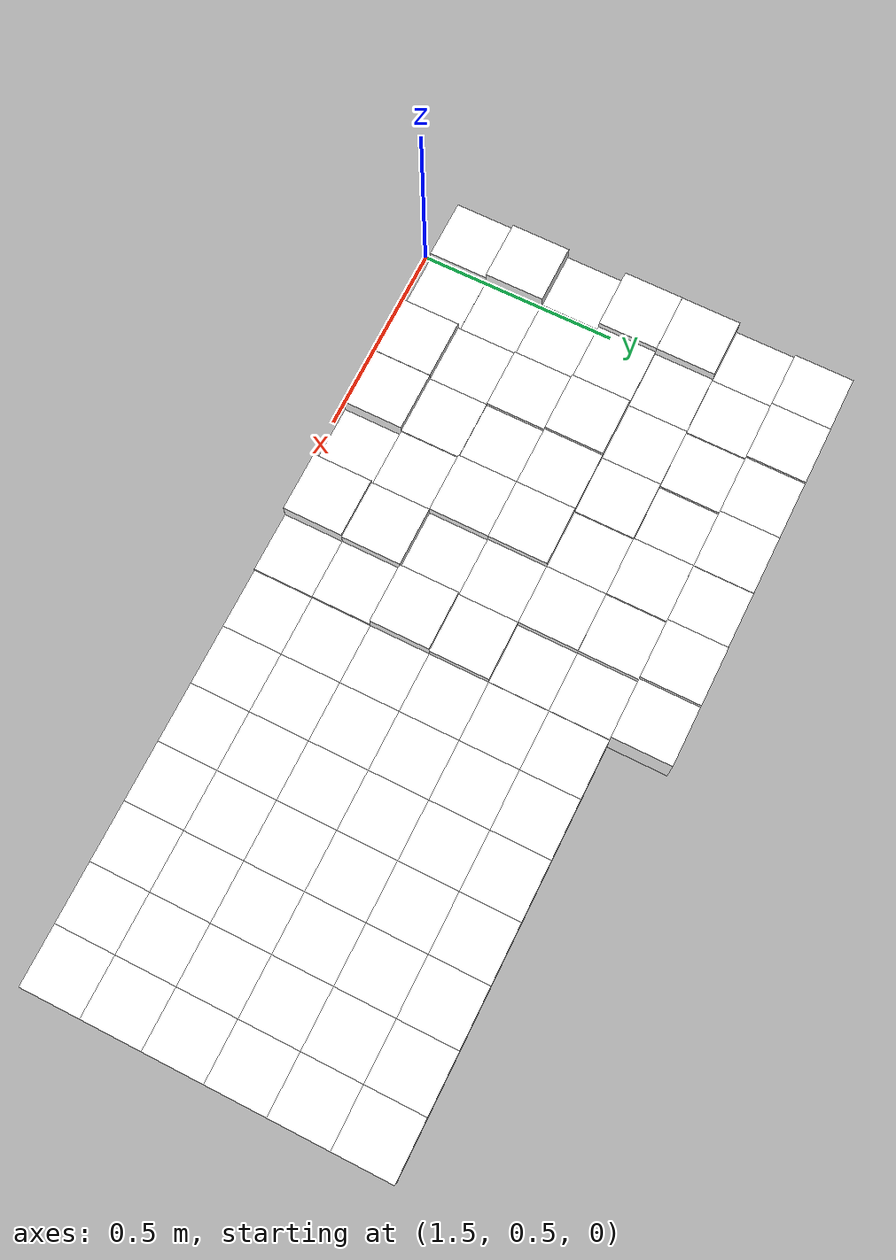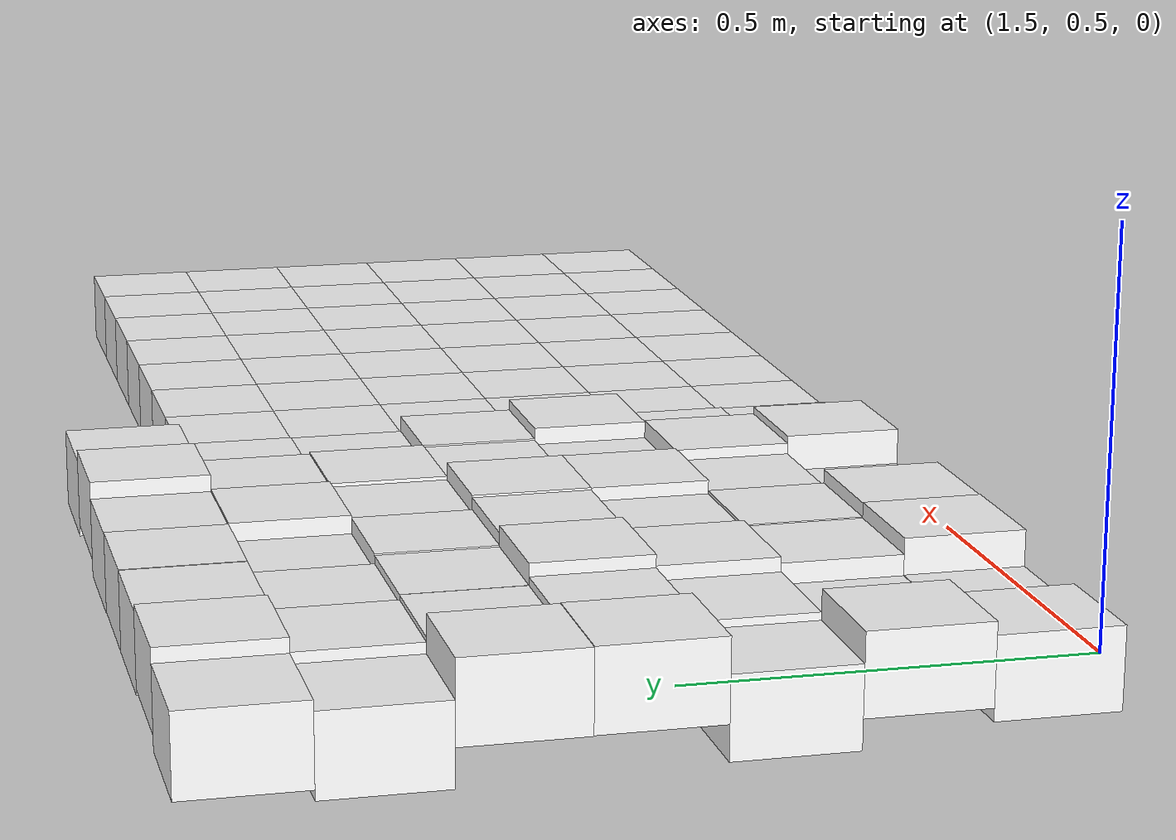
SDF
<sdf version="1.7">
 <world name="default">
  <include><uri>model://sun</uri></include>
  <model name="static_environment">
   <static>true</static>
   <link name="region_403">
    <pose>1.4499999999999997 0.6 0.02668696966901489 0.0 0.0 0.0</pose>
    <collision name="region_403_collision">
     <geometry><box><size>0.15 0.15 0.1</size></box></geometry>
     <surface><friction><ode><mu>1.0</mu><mu2>1.0</mu2></ode></friction></surface>
    </collision>
    <visual name="region_403_visual">
     <geometry><box><size>0.15 0.15 0.1</size></box></geometry>
     <material><ambient>1.0 1.0 1.0 1.0</ambient><diffuse>1.0 1.0 1.0 1.0</diffuse></material>
    </visual>
   </link>
   <link name="region_404">
    <pose>1.5999999999999996 0.6 0.0007287481242709837 0.0 0.0 0.0</pose>
    <collision name="region_404_collision">
     <geometry><box><size>0.15 0.15 0.1</size></box></geometry>
     <surface><friction><ode><mu>1.0</mu><mu2>1.0</mu2></ode></friction></surface>
    </collision>
    <visual name="region_404_visual">
     <geometry><box><size>0.15 0.15 0.1</size></box></geometry>
     <material><ambient>1.0 1.0 1.0 1.0</ambient><diffuse>1.0 1.0 1.0 1.0</diffuse></material>
    </visual>
   </link>
   <link name="region_405">
    <pose>1.7499999999999996 0.6 0.04593735040499425 0.0 0.0 0.0</pose>
    <collision name="region_405_collision">
     <geometry><box><size>0.15 0.15 0.1</size></box></geometry>
     <surface><friction><ode><mu>1.0</mu><mu2>1.0</mu2></ode></friction></surface>
    </collision>
    <visual name="region_405_visual">
     <geometry><box><size>0.15 0.15 0.1</size></box></geometry>
     <material><ambient>1.0 1.0 1.0 1.0</ambient><diffuse>1.0 1.0 1.0 1.0</diffuse></material>
    </visual>
   </link>
   <link name="region_406">
    <pose>1.8999999999999995 0.6 0.04503574270585062 0.0 0.0 0.0</pose>
    <collision name="region_406_collision">
     <geometry><box><size>0.15 0.15 0.1</size></box></geometry>
     <surface><friction><ode><mu>1.0</mu><mu2>1.0</mu2></ode></friction></surface>
    </collision>
    <visual name="region_406_visual">
     <geometry><box><size>0.15 0.15 0.1</size></box></geometry>
     <material><ambient>1.0 1.0 1.0 1.0</ambient><diffuse>1.0 1.0 1.0 1.0</diffuse></material>
    </visual>
   </link>
   <link name="region_407">
    <pose>2.05 0.6 0.0016710713813172296 0.0 0.0 0.0</pose>
    <collision name="region_407_collision">
     <geometry><box><size>0.15 0.15 0.1</size></box></geometry>
     <surface><friction><ode><mu>1.0</mu><mu2>1.0</mu2></ode></friction></surface>
    </collision>
    <visual name="region_407_visual">
     <geometry><box><size>0.15 0.15 0.1</size></box></geometry>
     <material><ambient>1.0 1.0 1.0 1.0</ambient><diffuse>1.0 1.0 1.0 1.0</diffuse></material>
    </visual>
   </link>
   <link name="region_408">
    <pose>2.2 0.6 0.047847466813755846 0.0 0.0 0.0</pose>
    <collision name="region_408_collision">
     <geometry><box><size>0.15 0.15 0.1</size></box></geometry>
     <surface><friction><ode><mu>1.0</mu><mu2>1.0</mu2></ode></friction></surface>
    </collision>
    <visual name="region_408_visual">
     <geometry><box><size>0.15 0.15 0.1</size></box></geometry>
     <material><ambient>1.0 1.0 1.0 1.0</ambient><diffuse>1.0 1.0 1.0 1.0</diffuse></material>
    </visual>
   </link>
   <link name="region_409">
    <pose>2.3500000000000005 0.6 0.006860466067803822 0.0 0.0 0.0</pose>
    <collision name="region_409_collision">
     <geometry><box><size>0.15 0.15 0.1</size></box></geometry>
     <surface><friction><ode><mu>1.0</mu><mu2>1.0</mu2></ode></friction></surface>
    </collision>
    <visual name="region_409_visual">
     <geometry><box><size>0.15 0.15 0.1</size></box></geometry>
     <material><ambient>1.0 1.0 1.0 1.0</ambient><diffuse>1.0 1.0 1.0 1.0</diffuse></material>
    </visual>
   </link>
   <link name="region_413">
    <pose>1.4499999999999997 0.75 0.04263677705546425 0.0 0.0 0.0</pose>
    <collision name="region_413_collision">
     <geometry><box><size>0.15 0.15 0.1</size></box></geometry>
     <surface><friction><ode><mu>1.0</mu><mu2>1.0</mu2></ode></friction></surface>
    </collision>
    <visual name="region_413_visual">
     <geometry><box><size>0.15 0.15 0.1</size></box></geometry>
     <material><ambient>1.0 1.0 1.0 1.0</ambient><diffuse>1.0 1.0 1.0 1.0</diffuse></material>
    </visual>
   </link>
   <link name="region_414">
    <pose>1.5999999999999996 0.75 0.00011296167592567686 0.0 0.0 0.0</pose>
    <collision name="region_414_collision">
     <geometry><box><size>0.15 0.15 0.1</size></box></geometry>
     <surface><friction><ode><mu>1.0</mu><mu2>1.0</mu2></ode></friction></surface>
    </collision>
    <visual name="region_414_visual">
     <geometry><box><size>0.15 0.15 0.1</size></box></geometry>
     <material><ambient>1.0 1.0 1.0 1.0</ambient><diffuse>1.0 1.0 1.0 1.0</diffuse></material>
    </visual>
   </link>
   <link name="region_415">
    <pose>1.7499999999999996 0.75 0.026061301361014644 0.0 0.0 0.0</pose>
    <collision name="region_415_collision">
     <geometry><box><size>0.15 0.15 0.1</size></box></geometry>
     <surface><friction><ode><mu>1.0</mu><mu2>1.0</mu2></ode></friction></surface>
    </collision>
    <visual name="region_415_visual">
     <geometry><box><size>0.15 0.15 0.1</size></box></geometry>
     <material><ambient>1.0 1.0 1.0 1.0</ambient><diffuse>1.0 1.0 1.0 1.0</diffuse></material>
    </visual>
   </link>
   <link name="region_416">
    <pose>1.8999999999999995 0.75 0.027601881663228328 0.0 0.0 0.0</pose>
    <collision name="region_416_collision">
     <geometry><box><size>0.15 0.15 0.1</size></box></geometry>
     <surface><friction><ode><mu>1.0</mu><mu2>1.0</mu2></ode></friction></surface>
    </collision>
    <visual name="region_416_visual">
     <geometry><box><size>0.15 0.15 0.1</size></box></geometry>
     <material><ambient>1.0 1.0 1.0 1.0</ambient><diffuse>1.0 1.0 1.0 1.0</diffuse></material>
    </visual>
   </link>
   <link name="region_417">
    <pose>2.05 0.75 0.024268870683135487 0.0 0.0 0.0</pose>
    <collision name="region_417_collision">
     <geometry><box><size>0.15 0.15 0.1</size></box></geometry>
     <surface><friction><ode><mu>1.0</mu><mu2>1.0</mu2></ode></friction></surface>
    </collision>
    <visual name="region_417_visual">
     <geometry><box><size>0.15 0.15 0.1</size></box></geometry>
     <material><ambient>1.0 1.0 1.0 1.0</ambient><diffuse>1.0 1.0 1.0 1.0</diffuse></material>
    </visual>
   </link>
   <link name="region_418">
    <pose>2.2 0.75 0.03840670770322112 0.0 0.0 0.0</pose>
    <collision name="region_418_collision">
     <geometry><box><size>0.15 0.15 0.1</size></box></geometry>
     <surface><friction><ode><mu>1.0</mu><mu2>1.0</mu2></ode></friction></surface>
    </collision>
    <visual name="region_418_visual">
     <geometry><box><size>0.15 0.15 0.1</size></box></geometry>
     <material><ambient>1.0 1.0 1.0 1.0</ambient><diffuse>1.0 1.0 1.0 1.0</diffuse></material>
    </visual>
   </link>
   <link name="region_419">
    <pose>2.3500000000000005 0.75 0.008035837656278506 0.0 0.0 0.0</pose>
    <collision name="region_419_collision">
     <geometry><box><size>0.15 0.15 0.1</size></box></geometry>
     <surface><friction><ode><mu>1.0</mu><mu2>1.0</mu2></ode></friction></surface>
    </collision>
    <visual name="region_419_visual">
     <geometry><box><size>0.15 0.15 0.1</size></box></geometry>
     <material><ambient>1.0 1.0 1.0 1.0</ambient><diffuse>1.0 1.0 1.0 1.0</diffuse></material>
    </visual>
   </link>
   <link name="region_423">
    <pose>1.4499999999999997 0.8999999999999999 0.0058136508700844915 0.0 0.0 0.0</pose>
    <collision name="region_423_collision">
     <geometry><box><size>0.15 0.15 0.1</size></box></geometry>
     <surface><friction><ode><mu>1.0</mu><mu2>1.0</mu2></ode></friction></surface>
    </collision>
    <visual name="region_423_visual">
     <geometry><box><size>0.15 0.15 0.1</size></box></geometry>
     <material><ambient>1.0 1.0 1.0 1.0</ambient><diffuse>1.0 1.0 1.0 1.0</diffuse></material>
    </visual>
   </link>
   <link name="region_424">
    <pose>1.5999999999999996 0.8999999999999999 0.015494879224501462 0.0 0.0 0.0</pose>
    <collision name="region_424_collision">
     <geometry><box><size>0.15 0.15 0.1</size></box></geometry>
     <surface><friction><ode><mu>1.0</mu><mu2>1.0</mu2></ode></friction></surface>
    </collision>
    <visual name="region_424_visual">
     <geometry><box><size>0.15 0.15 0.1</size></box></geometry>
     <material><ambient>1.0 1.0 1.0 1.0</ambient><diffuse>1.0 1.0 1.0 1.0</diffuse></material>
    </visual>
   </link>
   <link name="region_425">
    <pose>1.7499999999999996 0.8999999999999999 0.03357263226060014 0.0 0.0 0.0</pose>
    <collision name="region_425_collision">
     <geometry><box><size>0.15 0.15 0.1</size></box></geometry>
     <surface><friction><ode><mu>1.0</mu><mu2>1.0</mu2></ode></friction></surface>
    </collision>
    <visual name="region_425_visual">
     <geometry><box><size>0.15 0.15 0.1</size></box></geometry>
     <material><ambient>1.0 1.0 1.0 1.0</ambient><diffuse>1.0 1.0 1.0 1.0</diffuse></material>
    </visual>
   </link>
   <link name="region_426">
    <pose>1.8999999999999995 0.8999999999999999 0.023561488912500705 0.0 0.0 0.0</pose>
    <collision name="region_426_collision">
     <geometry><box><size>0.15 0.15 0.1</size></box></geometry>
     <surface><friction><ode><mu>1.0</mu><mu2>1.0</mu2></ode></friction></surface>
    </collision>
    <visual name="region_426_visual">
     <geometry><box><size>0.15 0.15 0.1</size></box></geometry>
     <material><ambient>1.0 1.0 1.0 1.0</ambient><diffuse>1.0 1.0 1.0 1.0</diffuse></material>
    </visual>
   </link>
   <link name="region_427">
    <pose>2.05 0.8999999999999999 0.040808414902301346 0.0 0.0 0.0</pose>
    <collision name="region_427_collision">
     <geometry><box><size>0.15 0.15 0.1</size></box></geometry>
     <surface><friction><ode><mu>1.0</mu><mu2>1.0</mu2></ode></friction></surface>
    </collision>
    <visual name="region_427_visual">
     <geometry><box><size>0.15 0.15 0.1</size></box></geometry>
     <material><ambient>1.0 1.0 1.0 1.0</ambient><diffuse>1.0 1.0 1.0 1.0</diffuse></material>
    </visual>
   </link>
   <link name="region_428">
    <pose>2.2 0.8999999999999999 0.014479339176527679 0.0 0.0 0.0</pose>
    <collision name="region_428_collision">
     <geometry><box><size>0.15 0.15 0.1</size></box></geometry>
     <surface><friction><ode><mu>1.0</mu><mu2>1.0</mu2></ode></friction></surface>
    </collision>
    <visual name="region_428_visual">
     <geometry><box><size>0.15 0.15 0.1</size></box></geometry>
     <material><ambient>1.0 1.0 1.0 1.0</ambient><diffuse>1.0 1.0 1.0 1.0</diffuse></material>
    </visual>
   </link>
   <link name="region_429">
    <pose>2.3500000000000005 0.8999999999999999 0.036656298880633535 0.0 0.0 0.0</pose>
    <collision name="region_429_collision">
     <geometry><box><size>0.15 0.15 0.1</size></box></geometry>
     <surface><friction><ode><mu>1.0</mu><mu2>1.0</mu2></ode></friction></surface>
    </collision>
    <visual name="region_429_visual">
     <geometry><box><size>0.15 0.15 0.1</size></box></geometry>
     <material><ambient>1.0 1.0 1.0 1.0</ambient><diffuse>1.0 1.0 1.0 1.0</diffuse></material>
    </visual>
   </link>
   <link name="region_433">
    <pose>1.4499999999999997 1.0499999999999998 0.04890290395082594 0.0 0.0 0.0</pose>
    <collision name="region_433_collision">
     <geometry><box><size>0.15 0.15 0.1</size></box></geometry>
     <surface><friction><ode><mu>1.0</mu><mu2>1.0</mu2></ode></friction></surface>
    </collision>
    <visual name="region_433_visual">
     <geometry><box><size>0.15 0.15 0.1</size></box></geometry>
     <material><ambient>1.0 1.0 1.0 1.0</ambient><diffuse>1.0 1.0 1.0 1.0</diffuse></material>
    </visual>
   </link>
   <link name="region_434">
    <pose>1.5999999999999996 1.0499999999999998 0.03122910558676762 0.0 0.0 0.0</pose>
    <collision name="region_434_collision">
     <geometry><box><size>0.15 0.15 0.1</size></box></geometry>
     <surface><friction><ode><mu>1.0</mu><mu2>1.0</mu2></ode></friction></surface>
    </collision>
    <visual name="region_434_visual">
     <geometry><box><size>0.15 0.15 0.1</size></box></geometry>
     <material><ambient>1.0 1.0 1.0 1.0</ambient><diffuse>1.0 1.0 1.0 1.0</diffuse></material>
    </visual>
   </link>
   <link name="region_435">
    <pose>1.7499999999999996 1.0499999999999998 0.04751567623497627 0.0 0.0 0.0</pose>
    <collision name="region_435_collision">
     <geometry><box><size>0.15 0.15 0.1</size></box></geometry>
     <surface><friction><ode><mu>1.0</mu><mu2>1.0</mu2></ode></friction></surface>
    </collision>
    <visual name="region_435_visual">
     <geometry><box><size>0.15 0.15 0.1</size></box></geometry>
     <material><ambient>1.0 1.0 1.0 1.0</ambient><diffuse>1.0 1.0 1.0 1.0</diffuse></material>
    </visual>
   </link>
   <link name="region_436">
    <pose>1.8999999999999995 1.0499999999999998 0.03837378253102444 0.0 0.0 0.0</pose>
    <collision name="region_436_collision">
     <geometry><box><size>0.15 0.15 0.1</size></box></geometry>
     <surface><friction><ode><mu>1.0</mu><mu2>1.0</mu2></ode></friction></surface>
    </collision>
    <visual name="region_436_visual">
     <geometry><box><size>0.15 0.15 0.1</size></box></geometry>
     <material><ambient>1.0 1.0 1.0 1.0</ambient><diffuse>1.0 1.0 1.0 1.0</diffuse></material>
    </visual>
   </link>
   <link name="region_437">
    <pose>2.05 1.0499999999999998 0.041250462660738674 0.0 0.0 0.0</pose>
    <collision name="region_437_collision">
     <geometry><box><size>0.15 0.15 0.1</size></box></geometry>
     <surface><friction><ode><mu>1.0</mu><mu2>1.0</mu2></ode></friction></surface>
    </collision>
    <visual name="region_437_visual">
     <geometry><box><size>0.15 0.15 0.1</size></box></geometry>
     <material><ambient>1.0 1.0 1.0 1.0</ambient><diffuse>1.0 1.0 1.0 1.0</diffuse></material>
    </visual>
   </link>
   <link name="region_438">
    <pose>2.2 1.0499999999999998 0.020332015090333083 0.0 0.0 0.0</pose>
    <collision name="region_438_collision">
     <geometry><box><size>0.15 0.15 0.1</size></box></geometry>
     <surface><friction><ode><mu>1.0</mu><mu2>1.0</mu2></ode></friction></surface>
    </collision>
    <visual name="region_438_visual">
     <geometry><box><size>0.15 0.15 0.1</size></box></geometry>
     <material><ambient>1.0 1.0 1.0 1.0</ambient><diffuse>1.0 1.0 1.0 1.0</diffuse></material>
    </visual>
   </link>
   <link name="region_439">
    <pose>2.3500000000000005 1.0499999999999998 0.022565420571065715 0.0 0.0 0.0</pose>
    <collision name="region_439_collision">
     <geometry><box><size>0.15 0.15 0.1</size></box></geometry>
     <surface><friction><ode><mu>1.0</mu><mu2>1.0</mu2></ode></friction></surface>
    </collision>
    <visual name="region_439_visual">
     <geometry><box><size>0.15 0.15 0.1</size></box></geometry>
     <material><ambient>1.0 1.0 1.0 1.0</ambient><diffuse>1.0 1.0 1.0 1.0</diffuse></material>
    </visual>
   </link>
   <link name="region_443">
    <pose>1.4499999999999997 1.2 0.048129845151392514 0.0 0.0 0.0</pose>
    <collision name="region_443_collision">
     <geometry><box><size>0.15 0.15 0.1</size></box></geometry>
     <surface><friction><ode><mu>1.0</mu><mu2>1.0</mu2></ode></friction></surface>
    </collision>
    <visual name="region_443_visual">
     <geometry><box><size>0.15 0.15 0.1</size></box></geometry>
     <material><ambient>1.0 1.0 1.0 1.0</ambient><diffuse>1.0 1.0 1.0 1.0</diffuse></material>
    </visual>
   </link>
   <link name="region_444">
    <pose>1.5999999999999996 1.2 0.020962513512955312 0.0 0.0 0.0</pose>
    <collision name="region_444_collision">
     <geometry><box><size>0.15 0.15 0.1</size></box></geometry>
     <surface><friction><ode><mu>1.0</mu><mu2>1.0</mu2></ode></friction></surface>
    </collision>
    <visual name="region_444_visual">
     <geometry><box><size>0.15 0.15 0.1</size></box></geometry>
     <material><ambient>1.0 1.0 1.0 1.0</ambient><diffuse>1.0 1.0 1.0 1.0</diffuse></material>
    </visual>
   </link>
   <link name="region_445">
    <pose>1.7499999999999996 1.2 0.021202622327549936 0.0 0.0 0.0</pose>
    <collision name="region_445_collision">
     <geometry><box><size>0.15 0.15 0.1</size></box></geometry>
     <surface><friction><ode><mu>1.0</mu><mu2>1.0</mu2></ode></friction></surface>
    </collision>
    <visual name="region_445_visual">
     <geometry><box><size>0.15 0.15 0.1</size></box></geometry>
     <material><ambient>1.0 1.0 1.0 1.0</ambient><diffuse>1.0 1.0 1.0 1.0</diffuse></material>
    </visual>
   </link>
   <link name="region_446">
    <pose>1.8999999999999995 1.2 0.023157443486367297 0.0 0.0 0.0</pose>
    <collision name="region_446_collision">
     <geometry><box><size>0.15 0.15 0.1</size></box></geometry>
     <surface><friction><ode><mu>1.0</mu><mu2>1.0</mu2></ode></friction></surface>
    </collision>
    <visual name="region_446_visual">
     <geometry><box><size>0.15 0.15 0.1</size></box></geometry>
     <material><ambient>1.0 1.0 1.0 1.0</ambient><diffuse>1.0 1.0 1.0 1.0</diffuse></material>
    </visual>
   </link>
   <link name="region_447">
    <pose>2.05 1.2 0.018686157441195766 0.0 0.0 0.0</pose>
    <collision name="region_447_collision">
     <geometry><box><size>0.15 0.15 0.1</size></box></geometry>
     <surface><friction><ode><mu>1.0</mu><mu2>1.0</mu2></ode></friction></surface>
    </collision>
    <visual name="region_447_visual">
     <geometry><box><size>0.15 0.15 0.1</size></box></geometry>
     <material><ambient>1.0 1.0 1.0 1.0</ambient><diffuse>1.0 1.0 1.0 1.0</diffuse></material>
    </visual>
   </link>
   <link name="region_448">
    <pose>2.2 1.2 0.02327540500862555 0.0 0.0 0.0</pose>
    <collision name="region_448_collision">
     <geometry><box><size>0.15 0.15 0.1</size></box></geometry>
     <surface><friction><ode><mu>1.0</mu><mu2>1.0</mu2></ode></friction></surface>
    </collision>
    <visual name="region_448_visual">
     <geometry><box><size>0.15 0.15 0.1</size></box></geometry>
     <material><ambient>1.0 1.0 1.0 1.0</ambient><diffuse>1.0 1.0 1.0 1.0</diffuse></material>
    </visual>
   </link>
   <link name="region_449">
    <pose>2.3500000000000005 1.2 0.0017584130735402383 0.0 0.0 0.0</pose>
    <collision name="region_449_collision">
     <geometry><box><size>0.15 0.15 0.1</size></box></geometry>
     <surface><friction><ode><mu>1.0</mu><mu2>1.0</mu2></ode></friction></surface>
    </collision>
    <visual name="region_449_visual">
     <geometry><box><size>0.15 0.15 0.1</size></box></geometry>
     <material><ambient>1.0 1.0 1.0 1.0</ambient><diffuse>1.0 1.0 1.0 1.0</diffuse></material>
    </visual>
   </link>
   <link name="region_453">
    <pose>1.4499999999999997 1.35 0.0013953894430766278 0.0 0.0 0.0</pose>
    <collision name="region_453_collision">
     <geometry><box><size>0.15 0.15 0.1</size></box></geometry>
     <surface><friction><ode><mu>1.0</mu><mu2>1.0</mu2></ode></friction></surface>
    </collision>
    <visual name="region_453_visual">
     <geometry><box><size>0.15 0.15 0.1</size></box></geometry>
     <material><ambient>1.0 1.0 1.0 1.0</ambient><diffuse>1.0 1.0 1.0 1.0</diffuse></material>
    </visual>
   </link>
   <link name="region_454">
    <pose>1.5999999999999996 1.35 0.015008502991199331 0.0 0.0 0.0</pose>
    <collision name="region_454_collision">
     <geometry><box><size>0.15 0.15 0.1</size></box></geometry>
     <surface><friction><ode><mu>1.0</mu><mu2>1.0</mu2></ode></friction></surface>
    </collision>
    <visual name="region_454_visual">
     <geometry><box><size>0.15 0.15 0.1</size></box></geometry>
     <material><ambient>1.0 1.0 1.0 1.0</ambient><diffuse>1.0 1.0 1.0 1.0</diffuse></material>
    </visual>
   </link>
   <link name="region_455">
    <pose>1.7499999999999996 1.35 0.011042626041444277 0.0 0.0 0.0</pose>
    <collision name="region_455_collision">
     <geometry><box><size>0.15 0.15 0.1</size></box></geometry>
     <surface><friction><ode><mu>1.0</mu><mu2>1.0</mu2></ode></friction></surface>
    </collision>
    <visual name="region_455_visual">
     <geometry><box><size>0.15 0.15 0.1</size></box></geometry>
     <material><ambient>1.0 1.0 1.0 1.0</ambient><diffuse>1.0 1.0 1.0 1.0</diffuse></material>
    </visual>
   </link>
   <link name="region_456">
    <pose>1.8999999999999995 1.35 0.0027509996670100068 0.0 0.0 0.0</pose>
    <collision name="region_456_collision">
     <geometry><box><size>0.15 0.15 0.1</size></box></geometry>
     <surface><friction><ode><mu>1.0</mu><mu2>1.0</mu2></ode></friction></surface>
    </collision>
    <visual name="region_456_visual">
     <geometry><box><size>0.15 0.15 0.1</size></box></geometry>
     <material><ambient>1.0 1.0 1.0 1.0</ambient><diffuse>1.0 1.0 1.0 1.0</diffuse></material>
    </visual>
   </link>
   <link name="region_457">
    <pose>2.05 1.35 0.026162303538914595 0.0 0.0 0.0</pose>
    <collision name="region_457_collision">
     <geometry><box><size>0.15 0.15 0.1</size></box></geometry>
     <surface><friction><ode><mu>1.0</mu><mu2>1.0</mu2></ode></friction></surface>
    </collision>
    <visual name="region_457_visual">
     <geometry><box><size>0.15 0.15 0.1</size></box></geometry>
     <material><ambient>1.0 1.0 1.0 1.0</ambient><diffuse>1.0 1.0 1.0 1.0</diffuse></material>
    </visual>
   </link>
   <link name="region_458">
    <pose>2.2 1.35 0.02081848286473051 0.0 0.0 0.0</pose>
    <collision name="region_458_collision">
     <geometry><box><size>0.15 0.15 0.1</size></box></geometry>
     <surface><friction><ode><mu>1.0</mu><mu2>1.0</mu2></ode></friction></surface>
    </collision>
    <visual name="region_458_visual">
     <geometry><box><size>0.15 0.15 0.1</size></box></geometry>
     <material><ambient>1.0 1.0 1.0 1.0</ambient><diffuse>1.0 1.0 1.0 1.0</diffuse></material>
    </visual>
   </link>
   <link name="region_459">
    <pose>2.3500000000000005 1.35 0.0024109374912785198 0.0 0.0 0.0</pose>
    <collision name="region_459_collision">
     <geometry><box><size>0.15 0.15 0.1</size></box></geometry>
     <surface><friction><ode><mu>1.0</mu><mu2>1.0</mu2></ode></friction></surface>
    </collision>
    <visual name="region_459_visual">
     <geometry><box><size>0.15 0.15 0.1</size></box></geometry>
     <material><ambient>1.0 1.0 1.0 1.0</ambient><diffuse>1.0 1.0 1.0 1.0</diffuse></material>
    </visual>
   </link>
   <link name="region_463">
    <pose>1.4499999999999997 1.5 0.013855860721259812 0.0 0.0 0.0</pose>
    <collision name="region_463_collision">
     <geometry><box><size>0.15 0.15 0.1</size></box></geometry>
     <surface><friction><ode><mu>1.0</mu><mu2>1.0</mu2></ode></friction></surface>
    </collision>
    <visual name="region_463_visual">
     <geometry><box><size>0.15 0.15 0.1</size></box></geometry>
     <material><ambient>1.0 1.0 1.0 1.0</ambient><diffuse>1.0 1.0 1.0 1.0</diffuse></material>
    </visual>
   </link>
   <link name="region_464">
    <pose>1.5999999999999996 1.5 0.03208390458427115 0.0 0.0 0.0</pose>
    <collision name="region_464_collision">
     <geometry><box><size>0.15 0.15 0.1</size></box></geometry>
     <surface><friction><ode><mu>1.0</mu><mu2>1.0</mu2></ode></friction></surface>
    </collision>
    <visual name="region_464_visual">
     <geometry><box><size>0.15 0.15 0.1</size></box></geometry>
     <material><ambient>1.0 1.0 1.0 1.0</ambient><diffuse>1.0 1.0 1.0 1.0</diffuse></material>
    </visual>
   </link>
   <link name="region_465">
    <pose>1.7499999999999996 1.5 0.024636865271825393 0.0 0.0 0.0</pose>
    <collision name="region_465_collision">
     <geometry><box><size>0.15 0.15 0.1</size></box></geometry>
     <surface><friction><ode><mu>1.0</mu><mu2>1.0</mu2></ode></friction></surface>
    </collision>
    <visual name="region_465_visual">
     <geometry><box><size>0.15 0.15 0.1</size></box></geometry>
     <material><ambient>1.0 1.0 1.0 1.0</ambient><diffuse>1.0 1.0 1.0 1.0</diffuse></material>
    </visual>
   </link>
   <link name="region_466">
    <pose>1.8999999999999995 1.5 0.02532780378340474 0.0 0.0 0.0</pose>
    <collision name="region_466_collision">
     <geometry><box><size>0.15 0.15 0.1</size></box></geometry>
     <surface><friction><ode><mu>1.0</mu><mu2>1.0</mu2></ode></friction></surface>
    </collision>
    <visual name="region_466_visual">
     <geometry><box><size>0.15 0.15 0.1</size></box></geometry>
     <material><ambient>1.0 1.0 1.0 1.0</ambient><diffuse>1.0 1.0 1.0 1.0</diffuse></material>
    </visual>
   </link>
   <link name="region_467">
    <pose>2.05 1.5 0.02307201300329776 0.0 0.0 0.0</pose>
    <collision name="region_467_collision">
     <geometry><box><size>0.15 0.15 0.1</size></box></geometry>
     <surface><friction><ode><mu>1.0</mu><mu2>1.0</mu2></ode></friction></surface>
    </collision>
    <visual name="region_467_visual">
     <geometry><box><size>0.15 0.15 0.1</size></box></geometry>
     <material><ambient>1.0 1.0 1.0 1.0</ambient><diffuse>1.0 1.0 1.0 1.0</diffuse></material>
    </visual>
   </link>
   <link name="region_468">
    <pose>2.2 1.5 0.04473715369639454 0.0 0.0 0.0</pose>
    <collision name="region_468_collision">
     <geometry><box><size>0.15 0.15 0.1</size></box></geometry>
     <surface><friction><ode><mu>1.0</mu><mu2>1.0</mu2></ode></friction></surface>
    </collision>
    <visual name="region_468_visual">
     <geometry><box><size>0.15 0.15 0.1</size></box></geometry>
     <material><ambient>1.0 1.0 1.0 1.0</ambient><diffuse>1.0 1.0 1.0 1.0</diffuse></material>
    </visual>
   </link>
   <link name="region_469">
    <pose>2.3500000000000005 1.5 0.030288884656779248 0.0 0.0 0.0</pose>
    <collision name="region_469_collision">
     <geometry><box><size>0.15 0.15 0.1</size></box></geometry>
     <surface><friction><ode><mu>1.0</mu><mu2>1.0</mu2></ode></friction></surface>
    </collision>
    <visual name="region_469_visual">
     <geometry><box><size>0.15 0.15 0.1</size></box></geometry>
     <material><ambient>1.0 1.0 1.0 1.0</ambient><diffuse>1.0 1.0 1.0 1.0</diffuse></material>
    </visual>
   </link>
   <link name="region_600">
    <pose>2.5 0.6 0.0 0.0 0.0 0.0</pose>
    <collision name="region_600_collision">
     <geometry><box><size>0.15 0.15 0.1</size></box></geometry>
     <surface><friction><ode><mu>1.0</mu><mu2>1.0</mu2></ode></friction></surface>
    </collision>
    <visual name="region_600_visual">
     <geometry><box><size>0.15 0.15 0.1</size></box></geometry>
     <material><ambient>1.0 1.0 1.0 1.0</ambient><diffuse>1.0 1.0 1.0 1.0</diffuse></material>
    </visual>
   </link>
   <link name="region_601">
    <pose>2.6500000000000004 0.6 0.0 0.0 0.0 0.0</pose>
    <collision name="region_601_collision">
     <geometry><box><size>0.15 0.15 0.1</size></box></geometry>
     <surface><friction><ode><mu>1.0</mu><mu2>1.0</mu2></ode></friction></surface>
    </collision>
    <visual name="region_601_visual">
     <geometry><box><size>0.15 0.15 0.1</size></box></geometry>
     <material><ambient>1.0 1.0 1.0 1.0</ambient><diffuse>1.0 1.0 1.0 1.0</diffuse></material>
    </visual>
   </link>
   <link name="region_602">
    <pose>2.8000000000000007 0.6 0.0 0.0 0.0 0.0</pose>
    <collision name="region_602_collision">
     <geometry><box><size>0.15 0.15 0.1</size></box></geometry>
     <surface><friction><ode><mu>1.0</mu><mu2>1.0</mu2></ode></friction></surface>
    </collision>
    <visual name="region_602_visual">
     <geometry><box><size>0.15 0.15 0.1</size></box></geometry>
     <material><ambient>1.0 1.0 1.0 1.0</ambient><diffuse>1.0 1.0 1.0 1.0</diffuse></material>
    </visual>
   </link>
   <link name="region_603">
    <pose>2.950000000000001 0.6 0.0 0.0 0.0 0.0</pose>
    <collision name="region_603_collision">
     <geometry><box><size>0.15 0.15 0.1</size></box></geometry>
     <surface><friction><ode><mu>1.0</mu><mu2>1.0</mu2></ode></friction></surface>
    </collision>
    <visual name="region_603_visual">
     <geometry><box><size>0.15 0.15 0.1</size></box></geometry>
     <material><ambient>1.0 1.0 1.0 1.0</ambient><diffuse>1.0 1.0 1.0 1.0</diffuse></material>
    </visual>
   </link>
   <link name="region_604">
    <pose>3.1000000000000014 0.6 0.0 0.0 0.0 0.0</pose>
    <collision name="region_604_collision">
     <geometry><box><size>0.15 0.15 0.1</size></box></geometry>
     <surface><friction><ode><mu>1.0</mu><mu2>1.0</mu2></ode></friction></surface>
    </collision>
    <visual name="region_604_visual">
     <geometry><box><size>0.15 0.15 0.1</size></box></geometry>
     <material><ambient>1.0 1.0 1.0 1.0</ambient><diffuse>1.0 1.0 1.0 1.0</diffuse></material>
    </visual>
   </link>
   <link name="region_605">
    <pose>3.2500000000000018 0.6 0.0 0.0 0.0 0.0</pose>
    <collision name="region_605_collision">
     <geometry><box><size>0.15 0.15 0.1</size></box></geometry>
     <surface><friction><ode><mu>1.0</mu><mu2>1.0</mu2></ode></friction></surface>
    </collision>
    <visual name="region_605_visual">
     <geometry><box><size>0.15 0.15 0.1</size></box></geometry>
     <material><ambient>1.0 1.0 1.0 1.0</ambient><diffuse>1.0 1.0 1.0 1.0</diffuse></material>
    </visual>
   </link>
   <link name="region_606">
    <pose>3.400000000000002 0.6 0.0 0.0 0.0 0.0</pose>
    <collision name="region_606_collision">
     <geometry><box><size>0.15 0.15 0.1</size></box></geometry>
     <surface><friction><ode><mu>1.0</mu><mu2>1.0</mu2></ode></friction></surface>
    </collision>
    <visual name="region_606_visual">
     <geometry><box><size>0.15 0.15 0.1</size></box></geometry>
     <material><ambient>1.0 1.0 1.0 1.0</ambient><diffuse>1.0 1.0 1.0 1.0</diffuse></material>
    </visual>
   </link>
   <link name="region_620">
    <pose>2.5 0.75 0.0 0.0 0.0 0.0</pose>
    <collision name="region_620_collision">
     <geometry><box><size>0.15 0.15 0.1</size></box></geometry>
     <surface><friction><ode><mu>1.0</mu><mu2>1.0</mu2></ode></friction></surface>
    </collision>
    <visual name="region_620_visual">
     <geometry><box><size>0.15 0.15 0.1</size></box></geometry>
     <material><ambient>1.0 1.0 1.0 1.0</ambient><diffuse>1.0 1.0 1.0 1.0</diffuse></material>
    </visual>
   </link>
   <link name="region_621">
    <pose>2.6500000000000004 0.75 0.0 0.0 0.0 0.0</pose>
    <collision name="region_621_collision">
     <geometry><box><size>0.15 0.15 0.1</size></box></geometry>
     <surface><friction><ode><mu>1.0</mu><mu2>1.0</mu2></ode></friction></surface>
    </collision>
    <visual name="region_621_visual">
     <geometry><box><size>0.15 0.15 0.1</size></box></geometry>
     <material><ambient>1.0 1.0 1.0 1.0</ambient><diffuse>1.0 1.0 1.0 1.0</diffuse></material>
    </visual>
   </link>
   <link name="region_622">
    <pose>2.8000000000000007 0.75 0.0 0.0 0.0 0.0</pose>
    <collision name="region_622_collision">
     <geometry><box><size>0.15 0.15 0.1</size></box></geometry>
     <surface><friction><ode><mu>1.0</mu><mu2>1.0</mu2></ode></friction></surface>
    </collision>
    <visual name="region_622_visual">
     <geometry><box><size>0.15 0.15 0.1</size></box></geometry>
     <material><ambient>1.0 1.0 1.0 1.0</ambient><diffuse>1.0 1.0 1.0 1.0</diffuse></material>
    </visual>
   </link>
   <link name="region_623">
    <pose>2.950000000000001 0.75 0.0 0.0 0.0 0.0</pose>
    <collision name="region_623_collision">
     <geometry><box><size>0.15 0.15 0.1</size></box></geometry>
     <surface><friction><ode><mu>1.0</mu><mu2>1.0</mu2></ode></friction></surface>
    </collision>
    <visual name="region_623_visual">
     <geometry><box><size>0.15 0.15 0.1</size></box></geometry>
     <material><ambient>1.0 1.0 1.0 1.0</ambient><diffuse>1.0 1.0 1.0 1.0</diffuse></material>
    </visual>
   </link>
   <link name="region_624">
    <pose>3.1000000000000014 0.75 0.0 0.0 0.0 0.0</pose>
    <collision name="region_624_collision">
     <geometry><box><size>0.15 0.15 0.1</size></box></geometry>
     <surface><friction><ode><mu>1.0</mu><mu2>1.0</mu2></ode></friction></surface>
    </collision>
    <visual name="region_624_visual">
     <geometry><box><size>0.15 0.15 0.1</size></box></geometry>
     <material><ambient>1.0 1.0 1.0 1.0</ambient><diffuse>1.0 1.0 1.0 1.0</diffuse></material>
    </visual>
   </link>
   <link name="region_625">
    <pose>3.2500000000000018 0.75 0.0 0.0 0.0 0.0</pose>
    <collision name="region_625_collision">
     <geometry><box><size>0.15 0.15 0.1</size></box></geometry>
     <surface><friction><ode><mu>1.0</mu><mu2>1.0</mu2></ode></friction></surface>
    </collision>
    <visual name="region_625_visual">
     <geometry><box><size>0.15 0.15 0.1</size></box></geometry>
     <material><ambient>1.0 1.0 1.0 1.0</ambient><diffuse>1.0 1.0 1.0 1.0</diffuse></material>
    </visual>
   </link>
   <link name="region_626">
    <pose>3.400000000000002 0.75 0.0 0.0 0.0 0.0</pose>
    <collision name="region_626_collision">
     <geometry><box><size>0.15 0.15 0.1</size></box></geometry>
     <surface><friction><ode><mu>1.0</mu><mu2>1.0</mu2></ode></friction></surface>
    </collision>
    <visual name="region_626_visual">
     <geometry><box><size>0.15 0.15 0.1</size></box></geometry>
     <material><ambient>1.0 1.0 1.0 1.0</ambient><diffuse>1.0 1.0 1.0 1.0</diffuse></material>
    </visual>
   </link>
   <link name="region_640">
    <pose>2.5 0.8999999999999999 0.0 0.0 0.0 0.0</pose>
    <collision name="region_640_collision">
     <geometry><box><size>0.15 0.15 0.1</size></box></geometry>
     <surface><friction><ode><mu>1.0</mu><mu2>1.0</mu2></ode></friction></surface>
    </collision>
    <visual name="region_640_visual">
     <geometry><box><size>0.15 0.15 0.1</size></box></geometry>
     <material><ambient>1.0 1.0 1.0 1.0</ambient><diffuse>1.0 1.0 1.0 1.0</diffuse></material>
    </visual>
   </link>
   <link name="region_641">
    <pose>2.6500000000000004 0.8999999999999999 0.0 0.0 0.0 0.0</pose>
    <collision name="region_641_collision">
     <geometry><box><size>0.15 0.15 0.1</size></box></geometry>
     <surface><friction><ode><mu>1.0</mu><mu2>1.0</mu2></ode></friction></surface>
    </collision>
    <visual name="region_641_visual">
     <geometry><box><size>0.15 0.15 0.1</size></box></geometry>
     <material><ambient>1.0 1.0 1.0 1.0</ambient><diffuse>1.0 1.0 1.0 1.0</diffuse></material>
    </visual>
   </link>
   <link name="region_642">
    <pose>2.8000000000000007 0.8999999999999999 0.0 0.0 0.0 0.0</pose>
    <collision name="region_642_collision">
     <geometry><box><size>0.15 0.15 0.1</size></box></geometry>
     <surface><friction><ode><mu>1.0</mu><mu2>1.0</mu2></ode></friction></surface>
    </collision>
    <visual name="region_642_visual">
     <geometry><box><size>0.15 0.15 0.1</size></box></geometry>
     <material><ambient>1.0 1.0 1.0 1.0</ambient><diffuse>1.0 1.0 1.0 1.0</diffuse></material>
    </visual>
   </link>
   <link name="region_643">
    <pose>2.950000000000001 0.8999999999999999 0.0 0.0 0.0 0.0</pose>
    <collision name="region_643_collision">
     <geometry><box><size>0.15 0.15 0.1</size></box></geometry>
     <surface><friction><ode><mu>1.0</mu><mu2>1.0</mu2></ode></friction></surface>
    </collision>
    <visual name="region_643_visual">
     <geometry><box><size>0.15 0.15 0.1</size></box></geometry>
     <material><ambient>1.0 1.0 1.0 1.0</ambient><diffuse>1.0 1.0 1.0 1.0</diffuse></material>
    </visual>
   </link>
   <link name="region_644">
    <pose>3.1000000000000014 0.8999999999999999 0.0 0.0 0.0 0.0</pose>
    <collision name="region_644_collision">
     <geometry><box><size>0.15 0.15 0.1</size></box></geometry>
     <surface><friction><ode><mu>1.0</mu><mu2>1.0</mu2></ode></friction></surface>
    </collision>
    <visual name="region_644_visual">
     <geometry><box><size>0.15 0.15 0.1</size></box></geometry>
     <material><ambient>1.0 1.0 1.0 1.0</ambient><diffuse>1.0 1.0 1.0 1.0</diffuse></material>
    </visual>
   </link>
   <link name="region_645">
    <pose>3.2500000000000018 0.8999999999999999 0.0 0.0 0.0 0.0</pose>
    <collision name="region_645_collision">
     <geometry><box><size>0.15 0.15 0.1</size></box></geometry>
     <surface><friction><ode><mu>1.0</mu><mu2>1.0</mu2></ode></friction></surface>
    </collision>
    <visual name="region_645_visual">
     <geometry><box><size>0.15 0.15 0.1</size></box></geometry>
     <material><ambient>1.0 1.0 1.0 1.0</ambient><diffuse>1.0 1.0 1.0 1.0</diffuse></material>
    </visual>
   </link>
   <link name="region_646">
    <pose>3.400000000000002 0.8999999999999999 0.0 0.0 0.0 0.0</pose>
    <collision name="region_646_collision">
     <geometry><box><size>0.15 0.15 0.1</size></box></geometry>
     <surface><friction><ode><mu>1.0</mu><mu2>1.0</mu2></ode></friction></surface>
    </collision>
    <visual name="region_646_visual">
     <geometry><box><size>0.15 0.15 0.1</size></box></geometry>
     <material><ambient>1.0 1.0 1.0 1.0</ambient><diffuse>1.0 1.0 1.0 1.0</diffuse></material>
    </visual>
   </link>
   <link name="region_660">
    <pose>2.5 1.0499999999999998 0.0 0.0 0.0 0.0</pose>
    <collision name="region_660_collision">
     <geometry><box><size>0.15 0.15 0.1</size></box></geometry>
     <surface><friction><ode><mu>1.0</mu><mu2>1.0</mu2></ode></friction></surface>
    </collision>
    <visual name="region_660_visual">
     <geometry><box><size>0.15 0.15 0.1</size></box></geometry>
     <material><ambient>1.0 1.0 1.0 1.0</ambient><diffuse>1.0 1.0 1.0 1.0</diffuse></material>
    </visual>
   </link>
   <link name="region_661">
    <pose>2.6500000000000004 1.0499999999999998 0.0 0.0 0.0 0.0</pose>
    <collision name="region_661_collision">
     <geometry><box><size>0.15 0.15 0.1</size></box></geometry>
     <surface><friction><ode><mu>1.0</mu><mu2>1.0</mu2></ode></friction></surface>
    </collision>
    <visual name="region_661_visual">
     <geometry><box><size>0.15 0.15 0.1</size></box></geometry>
     <material><ambient>1.0 1.0 1.0 1.0</ambient><diffuse>1.0 1.0 1.0 1.0</diffuse></material>
    </visual>
   </link>
   <link name="region_662">
    <pose>2.8000000000000007 1.0499999999999998 0.0 0.0 0.0 0.0</pose>
    <collision name="region_662_collision">
     <geometry><box><size>0.15 0.15 0.1</size></box></geometry>
     <surface><friction><ode><mu>1.0</mu><mu2>1.0</mu2></ode></friction></surface>
    </collision>
    <visual name="region_662_visual">
     <geometry><box><size>0.15 0.15 0.1</size></box></geometry>
     <material><ambient>1.0 1.0 1.0 1.0</ambient><diffuse>1.0 1.0 1.0 1.0</diffuse></material>
    </visual>
   </link>
   <link name="region_663">
    <pose>2.950000000000001 1.0499999999999998 0.0 0.0 0.0 0.0</pose>
    <collision name="region_663_collision">
     <geometry><box><size>0.15 0.15 0.1</size></box></geometry>
     <surface><friction><ode><mu>1.0</mu><mu2>1.0</mu2></ode></friction></surface>
    </collision>
    <visual name="region_663_visual">
     <geometry><box><size>0.15 0.15 0.1</size></box></geometry>
     <material><ambient>1.0 1.0 1.0 1.0</ambient><diffuse>1.0 1.0 1.0 1.0</diffuse></material>
    </visual>
   </link>
   <link name="region_664">
    <pose>3.1000000000000014 1.0499999999999998 0.0 0.0 0.0 0.0</pose>
    <collision name="region_664_collision">
     <geometry><box><size>0.15 0.15 0.1</size></box></geometry>
     <surface><friction><ode><mu>1.0</mu><mu2>1.0</mu2></ode></friction></surface>
    </collision>
    <visual name="region_664_visual">
     <geometry><box><size>0.15 0.15 0.1</size></box></geometry>
     <material><ambient>1.0 1.0 1.0 1.0</ambient><diffuse>1.0 1.0 1.0 1.0</diffuse></material>
    </visual>
   </link>
   <link name="region_665">
    <pose>3.2500000000000018 1.0499999999999998 0.0 0.0 0.0 0.0</pose>
    <collision name="region_665_collision">
     <geometry><box><size>0.15 0.15 0.1</size></box></geometry>
     <surface><friction><ode><mu>1.0</mu><mu2>1.0</mu2></ode></friction></surface>
    </collision>
    <visual name="region_665_visual">
     <geometry><box><size>0.15 0.15 0.1</size></box></geometry>
     <material><ambient>1.0 1.0 1.0 1.0</ambient><diffuse>1.0 1.0 1.0 1.0</diffuse></material>
    </visual>
   </link>
   <link name="region_666">
    <pose>3.400000000000002 1.0499999999999998 0.0 0.0 0.0 0.0</pose>
    <collision name="region_666_collision">
     <geometry><box><size>0.15 0.15 0.1</size></box></geometry>
     <surface><friction><ode><mu>1.0</mu><mu2>1.0</mu2></ode></friction></surface>
    </collision>
    <visual name="region_666_visual">
     <geometry><box><size>0.15 0.15 0.1</size></box></geometry>
     <material><ambient>1.0 1.0 1.0 1.0</ambient><diffuse>1.0 1.0 1.0 1.0</diffuse></material>
    </visual>
   </link>
   <link name="region_680">
    <pose>2.5 1.2 0.0 0.0 0.0 0.0</pose>
    <collision name="region_680_collision">
     <geometry><box><size>0.15 0.15 0.1</size></box></geometry>
     <surface><friction><ode><mu>1.0</mu><mu2>1.0</mu2></ode></friction></surface>
    </collision>
    <visual name="region_680_visual">
     <geometry><box><size>0.15 0.15 0.1</size></box></geometry>
     <material><ambient>1.0 1.0 1.0 1.0</ambient><diffuse>1.0 1.0 1.0 1.0</diffuse></material>
    </visual>
   </link>
   <link name="region_681">
    <pose>2.6500000000000004 1.2 0.0 0.0 0.0 0.0</pose>
    <collision name="region_681_collision">
     <geometry><box><size>0.15 0.15 0.1</size></box></geometry>
     <surface><friction><ode><mu>1.0</mu><mu2>1.0</mu2></ode></friction></surface>
    </collision>
    <visual name="region_681_visual">
     <geometry><box><size>0.15 0.15 0.1</size></box></geometry>
     <material><ambient>1.0 1.0 1.0 1.0</ambient><diffuse>1.0 1.0 1.0 1.0</diffuse></material>
    </visual>
   </link>
   <link name="region_682">
    <pose>2.8000000000000007 1.2 0.0 0.0 0.0 0.0</pose>
    <collision name="region_682_collision">
     <geometry><box><size>0.15 0.15 0.1</size></box></geometry>
     <surface><friction><ode><mu>1.0</mu><mu2>1.0</mu2></ode></friction></surface>
    </collision>
    <visual name="region_682_visual">
     <geometry><box><size>0.15 0.15 0.1</size></box></geometry>
     <material><ambient>1.0 1.0 1.0 1.0</ambient><diffuse>1.0 1.0 1.0 1.0</diffuse></material>
    </visual>
   </link>
   <link name="region_683">
    <pose>2.950000000000001 1.2 0.0 0.0 0.0 0.0</pose>
    <collision name="region_683_collision">
     <geometry><box><size>0.15 0.15 0.1</size></box></geometry>
     <surface><friction><ode><mu>1.0</mu><mu2>1.0</mu2></ode></friction></surface>
    </collision>
    <visual name="region_683_visual">
     <geometry><box><size>0.15 0.15 0.1</size></box></geometry>
     <material><ambient>1.0 1.0 1.0 1.0</ambient><diffuse>1.0 1.0 1.0 1.0</diffuse></material>
    </visual>
   </link>
   <link name="region_684">
    <pose>3.1000000000000014 1.2 0.0 0.0 0.0 0.0</pose>
    <collision name="region_684_collision">
     <geometry><box><size>0.15 0.15 0.1</size></box></geometry>
     <surface><friction><ode><mu>1.0</mu><mu2>1.0</mu2></ode></friction></surface>
    </collision>
    <visual name="region_684_visual">
     <geometry><box><size>0.15 0.15 0.1</size></box></geometry>
     <material><ambient>1.0 1.0 1.0 1.0</ambient><diffuse>1.0 1.0 1.0 1.0</diffuse></material>
    </visual>
   </link>
   <link name="region_685">
    <pose>3.2500000000000018 1.2 0.0 0.0 0.0 0.0</pose>
    <collision name="region_685_collision">
     <geometry><box><size>0.15 0.15 0.1</size></box></geometry>
     <surface><friction><ode><mu>1.0</mu><mu2>1.0</mu2></ode></friction></surface>
    </collision>
    <visual name="region_685_visual">
     <geometry><box><size>0.15 0.15 0.1</size></box></geometry>
     <material><ambient>1.0 1.0 1.0 1.0</ambient><diffuse>1.0 1.0 1.0 1.0</diffuse></material>
    </visual>
   </link>
   <link name="region_686">
    <pose>3.400000000000002 1.2 0.0 0.0 0.0 0.0</pose>
    <collision name="region_686_collision">
     <geometry><box><size>0.15 0.15 0.1</size></box></geometry>
     <surface><friction><ode><mu>1.0</mu><mu2>1.0</mu2></ode></friction></surface>
    </collision>
    <visual name="region_686_visual">
     <geometry><box><size>0.15 0.15 0.1</size></box></geometry>
     <material><ambient>1.0 1.0 1.0 1.0</ambient><diffuse>1.0 1.0 1.0 1.0</diffuse></material>
    </visual>
   </link>
   <link name="region_700">
    <pose>2.5 1.35 0.0 0.0 0.0 0.0</pose>
    <collision name="region_700_collision">
     <geometry><box><size>0.15 0.15 0.1</size></box></geometry>
     <surface><friction><ode><mu>1.0</mu><mu2>1.0</mu2></ode></friction></surface>
    </collision>
    <visual name="region_700_visual">
     <geometry><box><size>0.15 0.15 0.1</size></box></geometry>
     <material><ambient>1.0 1.0 1.0 1.0</ambient><diffuse>1.0 1.0 1.0 1.0</diffuse></material>
    </visual>
   </link>
   <link name="region_701">
    <pose>2.6500000000000004 1.35 0.0 0.0 0.0 0.0</pose>
    <collision name="region_701_collision">
     <geometry><box><size>0.15 0.15 0.1</size></box></geometry>
     <surface><friction><ode><mu>1.0</mu><mu2>1.0</mu2></ode></friction></surface>
    </collision>
    <visual name="region_701_visual">
     <geometry><box><size>0.15 0.15 0.1</size></box></geometry>
     <material><ambient>1.0 1.0 1.0 1.0</ambient><diffuse>1.0 1.0 1.0 1.0</diffuse></material>
    </visual>
   </link>
   <link name="region_702">
    <pose>2.8000000000000007 1.35 0.0 0.0 0.0 0.0</pose>
    <collision name="region_702_collision">
     <geometry><box><size>0.15 0.15 0.1</size></box></geometry>
     <surface><friction><ode><mu>1.0</mu><mu2>1.0</mu2></ode></friction></surface>
    </collision>
    <visual name="region_702_visual">
     <geometry><box><size>0.15 0.15 0.1</size></box></geometry>
     <material><ambient>1.0 1.0 1.0 1.0</ambient><diffuse>1.0 1.0 1.0 1.0</diffuse></material>
    </visual>
   </link>
   <link name="region_703">
    <pose>2.950000000000001 1.35 0.0 0.0 0.0 0.0</pose>
    <collision name="region_703_collision">
     <geometry><box><size>0.15 0.15 0.1</size></box></geometry>
     <surface><friction><ode><mu>1.0</mu><mu2>1.0</mu2></ode></friction></surface>
    </collision>
    <visual name="region_703_visual">
     <geometry><box><size>0.15 0.15 0.1</size></box></geometry>
     <material><ambient>1.0 1.0 1.0 1.0</ambient><diffuse>1.0 1.0 1.0 1.0</diffuse></material>
    </visual>
   </link>
   <link name="region_704">
    <pose>3.1000000000000014 1.35 0.0 0.0 0.0 0.0</pose>
    <collision name="region_704_collision">
     <geometry><box><size>0.15 0.15 0.1</size></box></geometry>
     <surface><friction><ode><mu>1.0</mu><mu2>1.0</mu2></ode></friction></surface>
    </collision>
    <visual name="region_704_visual">
     <geometry><box><size>0.15 0.15 0.1</size></box></geometry>
     <material><ambient>1.0 1.0 1.0 1.0</ambient><diffuse>1.0 1.0 1.0 1.0</diffuse></material>
    </visual>
   </link>
   <link name="region_705">
    <pose>3.2500000000000018 1.35 0.0 0.0 0.0 0.0</pose>
    <collision name="region_705_collision">
     <geometry><box><size>0.15 0.15 0.1</size></box></geometry>
     <surface><friction><ode><mu>1.0</mu><mu2>1.0</mu2></ode></friction></surface>
    </collision>
    <visual name="region_705_visual">
     <geometry><box><size>0.15 0.15 0.1</size></box></geometry>
     <material><ambient>1.0 1.0 1.0 1.0</ambient><diffuse>1.0 1.0 1.0 1.0</diffuse></material>
    </visual>
   </link>
   <link name="region_706">
    <pose>3.400000000000002 1.35 0.0 0.0 0.0 0.0</pose>
    <collision name="region_706_collision">
     <geometry><box><size>0.15 0.15 0.1</size></box></geometry>
     <surface><friction><ode><mu>1.0</mu><mu2>1.0</mu2></ode></friction></surface>
    </collision>
    <visual name="region_706_visual">
     <geometry><box><size>0.15 0.15 0.1</size></box></geometry>
     <material><ambient>1.0 1.0 1.0 1.0</ambient><diffuse>1.0 1.0 1.0 1.0</diffuse></material>
    </visual>
   </link>
  </model>
 </world>
</sdf>
